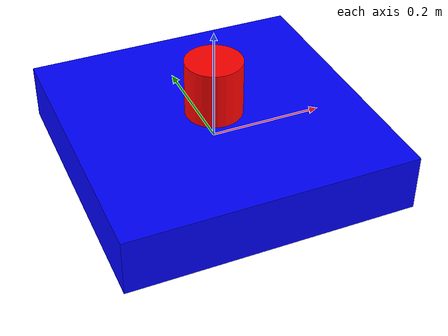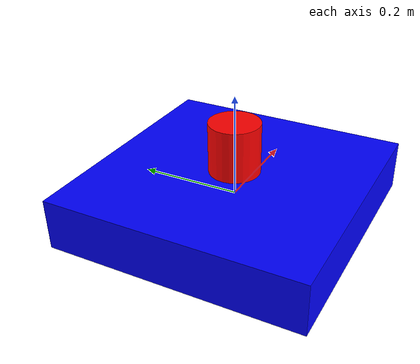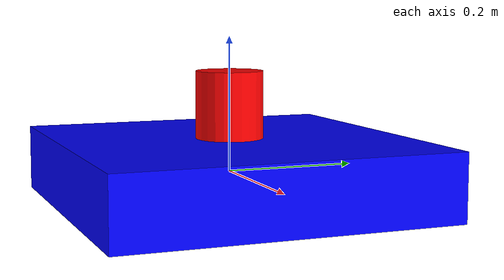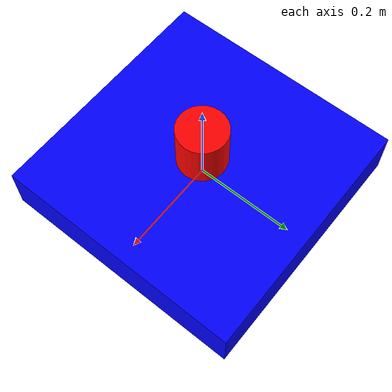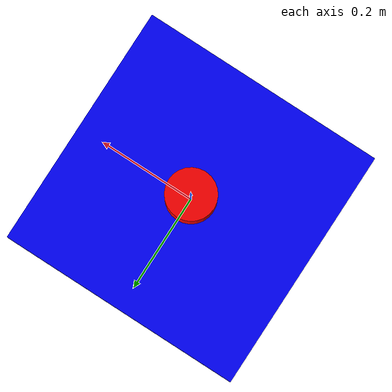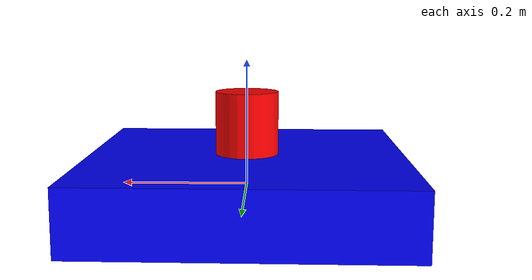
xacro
<?xml version="1.0"?>
<robot xmlns:xacro="http://ros.org/wiki/xacro" name="my_robot">

  <!-- Material definitions -->
  <material name="blue">
    <color rgba="0 0 1 1"/>
  </material>
  <material name="red">
    <color rgba="1 0 0 1"/>
  </material>

  <!-- Base Link -->
  <link name="base_link">
    <visual>
      <geometry>
        <box size="0.5 0.5 0.1"/>
      </geometry>
      <material name="blue"/>
    </visual>
  </link>

  <!-- Laser Link -->
  <link name="laser">
    <visual>
      <geometry>
        <cylinder length="0.1" radius="0.05"/>
      </geometry>
      <material name="red"/>
    </visual>
  </link>

  <!-- Joint between base_link and laser -->
  <joint name="laser_joint" type="revolute">
    <parent link="base_link"/>
    <child link="laser"/>
    <origin xyz="0 0 0.1" rpy="0 0 0"/>
    <axis xyz="0 0 1"/>
    <limit lower="-1.57" upper="1.57" effort="1.0" velocity="1.0"/>
  </joint>

</robot>
